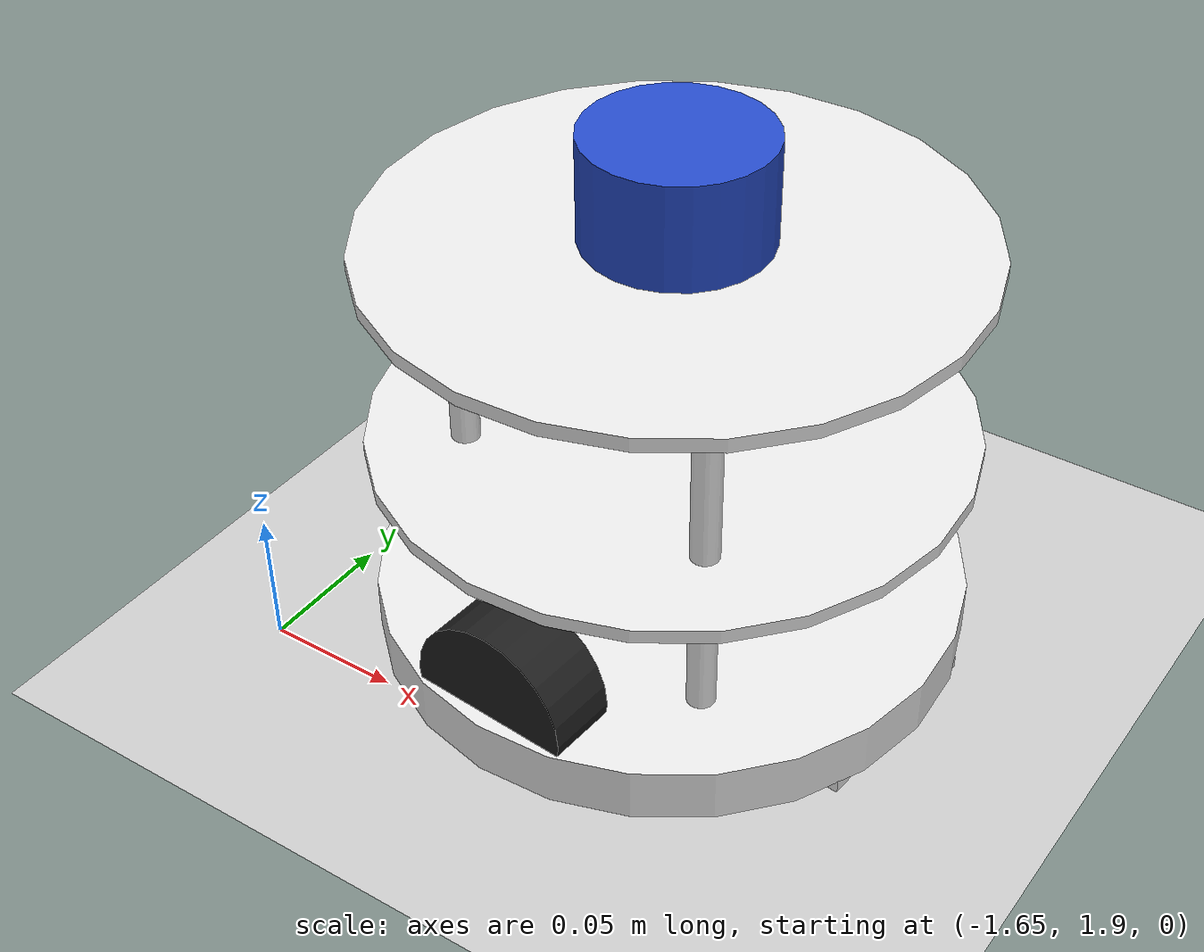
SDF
<sdf version="1.7">
 <world name="default">
  <light name="sun" type="directional">
   <pose>0 0 10 0 -0 0</pose>
   <diffuse>0.8 0.8 0.8 1</diffuse>
   <specular>0.2 0.2 0.2 1</specular>
   <attenuation>
    <range>1000</range>
    <constant>0.9</constant>
    <linear>0.01</linear>
    <quadratic>0.001</quadratic>
   </attenuation>
   <direction>-0.5 0.1 -0.9</direction>
   <spot><inner_angle>0</inner_angle><outer_angle>0</outer_angle><falloff>0</falloff></spot>
  </light>
  <model name="ground_plane">
   <static>1</static>
   <link name="link">
    <collision name="collision">
     <geometry><plane><normal>0 0 1</normal><size>100 100</size></plane></geometry>
     <surface>
      <contact><collide_bitmask>65535</collide_bitmask></contact>
      <friction><ode><mu>100</mu><mu2>50</mu2></ode></friction>
     </surface>
    </collision>
    <visual name="visual">
     <cast_shadows>0</cast_shadows>
     <geometry><plane><normal>0 0 1</normal><size>100 100</size></plane></geometry>
     <material>
      <script><uri>file://media/materials/scripts/gazebo.material</uri><name>Gazebo/Grey</name></script>
     </material>
    </visual>
   </link>
  </model>
  <gravity>0 0 -9.8</gravity>
  <magnetic_field>6e-06 2.3e-05 -4.2e-05</magnetic_field>
  <atmosphere type="adiabatic"/>
  <physics type="ode">
   <max_step_size>0.001</max_step_size>
   <real_time_factor>1</real_time_factor>
   <real_time_update_rate>1000</real_time_update_rate>
  </physics>
  <scene><ambient>0.4 0.4 0.4 1</ambient><background>0.7 0.7 0.7 1</background><shadows>1</shadows></scene>
  <audio><device>default</device></audio>
  <spherical_coordinates>
   <surface_model>EARTH_WGS84</surface_model>
   <latitude_deg>0</latitude_deg>
   <longitude_deg>0</longitude_deg>
   <elevation>0</elevation>
   <heading_deg>0</heading_deg>
  </spherical_coordinates>
  <model name="my_bot">
   <link name="base_link">
    <inertial>
     <pose>0 0 0.052623 0 -0 0</pose>
     <mass>2.07</mass>
     <inertia>
      <ixx>0.00988511</ixx>
      <ixy>0</ixy>
      <ixz>3.38813e-21</ixz>
      <iyy>0.0100134</iyy>
      <iyz>0</iyz>
      <izz>0.0111984</izz>
     </inertia>
    </inertial>
    <collision name="base_link_fixed_joint_lump__chassis_collision">
     <pose>0 0 0.051 0 -0 0</pose>
     <geometry><cylinder><length>0.15</length><radius>0.11</radius></cylinder></geometry>
    </collision>
    <collision name="base_link_fixed_joint_lump__laser_frame_collision_1">
     <pose>0 0 0.149 0 -0 0</pose>
     <geometry><cylinder><length>0.04</length><radius>0.0325</radius></cylinder></geometry>
    </collision>
    <collision name="base_link_fixed_joint_lump__suppor_back_collision_2">
     <pose>-0.0825 0 -0.026 0 -0 0</pose>
     <geometry><box><size>0.03 0.075 0.005</size></box></geometry>
    </collision>
    <collision name="base_link_fixed_joint_lump__suppor_front_collision_3">
     <pose>0.0825 0 -0.026 0 -0 0</pose>
     <geometry><box><size>0.03 0.075 0.005</size></box></geometry>
    </collision>
    <visual name="base_link_fixed_joint_lump__chassis_visual">
     <pose>0 0 -0.014 0 -0 0</pose>
     <geometry><cylinder><length>0.02</length><radius>0.105</radius></cylinder></geometry>
     <material>
      <script><name>Gazebo/White</name><uri>file://media/materials/scripts/gazebo.material</uri></script>
     </material>
    </visual>
    <visual name="base_link_fixed_joint_lump__chassis_visual_1">
     <pose>0 0 0.056 0 -0 0</pose>
     <geometry><cylinder><length>0.005</length><radius>0.105</radius></cylinder></geometry>
     <material>
      <script><name>Gazebo/White</name><uri>file://media/materials/scripts/gazebo.material</uri></script>
     </material>
    </visual>
    <visual name="base_link_fixed_joint_lump__chassis_visual_2">
     <pose>0 0 0.129 0 -0 0</pose>
     <geometry><cylinder><length>0.005</length><radius>0.105</radius></cylinder></geometry>
     <material>
      <script><name>Gazebo/White</name><uri>file://media/materials/scripts/gazebo.material</uri></script>
     </material>
    </visual>
    <visual name="base_link_fixed_joint_lump__chassis_visual_3">
     <pose>0 0 0.129 0 -0 0</pose>
     <geometry><cylinder><length>0.005</length><radius>0.105</radius></cylinder></geometry>
     <material>
      <script><name>Gazebo/White</name><uri>file://media/materials/scripts/gazebo.material</uri></script>
     </material>
    </visual>
    <visual name="base_link_fixed_joint_lump__chassis_visual_4">
     <pose>0.05 0.05 0.051 0 -0 0</pose>
     <geometry><cylinder><length>0.15</length><radius>0.005</radius></cylinder></geometry>
     <material>
      <script><name>Gazebo/White</name><uri>file://media/materials/scripts/gazebo.material</uri></script>
     </material>
    </visual>
    <visual name="base_link_fixed_joint_lump__chassis_visual_5">
     <pose>-0.05 0.05 0.051 0 -0 0</pose>
     <geometry><cylinder><length>0.15</length><radius>0.005</radius></cylinder></geometry>
     <material>
      <script><name>Gazebo/White</name><uri>file://media/materials/scripts/gazebo.material</uri></script>
     </material>
    </visual>
    <visual name="base_link_fixed_joint_lump__chassis_visual_6">
     <pose>-0.05 -0.05 0.051 0 -0 0</pose>
     <geometry><cylinder><length>0.15</length><radius>0.005</radius></cylinder></geometry>
     <material>
      <script><name>Gazebo/White</name><uri>file://media/materials/scripts/gazebo.material</uri></script>
     </material>
    </visual>
    <visual name="base_link_fixed_joint_lump__chassis_visual_7">
     <pose>0.05 -0.05 0.051 0 -0 0</pose>
     <geometry><cylinder><length>0.15</length><radius>0.005</radius></cylinder></geometry>
     <material>
      <script><name>Gazebo/White</name><uri>file://media/materials/scripts/gazebo.material</uri></script>
     </material>
    </visual>
    <visual name="base_link_fixed_joint_lump__laser_frame_visual_8">
     <pose>0 0 0.149 0 -0 0</pose>
     <geometry><cylinder><length>0.04</length><radius>0.0325</radius></cylinder></geometry>
     <material>
      <script><name>Gazebo/Blue</name><uri>file://media/materials/scripts/gazebo.material</uri></script>
     </material>
    </visual>
    <visual name="base_link_fixed_joint_lump__suppor_back_visual_9">
     <pose>-0.0825 0 -0.026 0 -0 0</pose>
     <geometry><box><size>0.03 0.075 0.005</size></box></geometry>
     <material>
      <script><name>Gazebo/White</name><uri>file://media/materials/scripts/gazebo.material</uri></script>
     </material>
    </visual>
    <visual name="base_link_fixed_joint_lump__suppor_front_visual_10">
     <pose>0.0825 0 -0.026 0 -0 0</pose>
     <geometry><box><size>0.03 0.075 0.005</size></box></geometry>
     <material>
      <script><name>Gazebo/White</name><uri>file://media/materials/scripts/gazebo.material</uri></script>
     </material>
    </visual>
    <sensor name="laser" type="ray">
     <visualize>1</visualize>
     <update_rate>10</update_rate>
     <ray>
      <scan>
       <horizontal>
        <samples>360</samples>
        <min_angle>-3.14</min_angle>
        <max_angle>3.14</max_angle>
        <resolution>1</resolution>
       </horizontal>
       <vertical><samples>1</samples><min_angle>0</min_angle><max_angle>0</max_angle></vertical>
      </scan>
      <range><min>0.3</min><max>12</max></range>
     </ray>
     <plugin name="laser_controller" filename="libgazebo_ros_ray_sensor.so">
      <ros><argument>~/out:=scan</argument></ros>
      <output_type>sensor_msgs/LaserScan</output_type>
      <frame_name>laser_frame</frame_name>
     </plugin>
     <pose>0 0 0.149 0 -0 0</pose>
    </sensor>
   </link>
   <joint name="left_wheel_joint" type="revolute">
    <pose relative_to="base_link">0 0.087 0 -1.57 0 0</pose>
    <parent>base_link</parent>
    <child>left_wheel</child>
    <axis>
     <xyz>0 0 1</xyz>
     <limit><lower>-1e+16</lower><upper>1e+16</upper></limit>
     <dynamics><spring_reference>0</spring_reference><spring_stiffness>0</spring_stiffness></dynamics>
    </axis>
   </joint>
   <link name="left_wheel">
    <pose relative_to="left_wheel_joint">0 0 0 0 -0 0</pose>
    <inertial>
     <mass>0.1</mass>
     <inertia>
      <ixx>2.3125e-05</ixx>
      <ixy>0</ixy>
      <ixz>0</ixz>
      <iyy>2.3125e-05</iyy>
      <iyz>0</iyz>
      <izz>3.125e-05</izz>
     </inertia>
    </inertial>
    <collision name="left_wheel_collision">
     <geometry><cylinder><length>0.025</length><radius>0.03</radius></cylinder></geometry>
    </collision>
    <visual name="left_wheel_visual">
     <geometry><cylinder><length>0.025</length><radius>0.03</radius></cylinder></geometry>
     <material>
      <script><name>Gazebo/Black</name><uri>file://media/materials/scripts/gazebo.material</uri></script>
     </material>
    </visual>
   </link>
   <joint name="right_wheel_joint" type="revolute">
    <pose relative_to="base_link">0 -0.087 0 1.57 -0 0</pose>
    <parent>base_link</parent>
    <child>right_wheel</child>
    <axis>
     <xyz>0 0 -1</xyz>
     <limit><lower>-1e+16</lower><upper>1e+16</upper></limit>
     <dynamics><spring_reference>0</spring_reference><spring_stiffness>0</spring_stiffness></dynamics>
    </axis>
   </joint>
   <link name="right_wheel">
    <pose relative_to="right_wheel_joint">0 0 0 0 -0 0</pose>
    <inertial>
     <mass>0.1</mass>
     <inertia>
      <ixx>2.3125e-05</ixx>
      <ixy>0</ixy>
      <ixz>0</ixz>
      <iyy>2.3125e-05</iyy>
      <iyz>0</iyz>
      <izz>3.125e-05</izz>
     </inertia>
    </inertial>
    <collision name="right_wheel_collision">
     <geometry><cylinder><length>0.025</length><radius>0.03</radius></cylinder></geometry>
    </collision>
    <visual name="right_wheel_visual">
     <geometry><cylinder><length>0.025</length><radius>0.03</radius></cylinder></geometry>
     <material>
      <script><name>Gazebo/Black</name><uri>file://media/materials/scripts/gazebo.material</uri></script>
     </material>
    </visual>
   </link>
   <static>0</static>
   <plugin name="diff_drive" filename="libgazebo_ros_diff_drive.so">
    <left_joint>left_wheel_joint</left_joint>
    <right_joint>right_wheel_joint</right_joint>
    <wheel_separation>0.173</wheel_separation>
    <wheel_diameter>0.06</wheel_diameter>
    <max_wheel_torque>200</max_wheel_torque>
    <max_wheel_acceleration>10.0</max_wheel_acceleration>
    <odometry_frame>odom</odometry_frame>
    <robot_base_frame>base_link</robot_base_frame>
    <publish_odom>1</publish_odom>
    <publish_odom_tf>1</publish_odom_tf>
    <publish_wheel_tf>1</publish_wheel_tf>
   </plugin>
   <pose>-1.53694 1.98634 0.030007 -6e-06 -0.015433 3.07136</pose>
  </model>
 </world>
</sdf>
